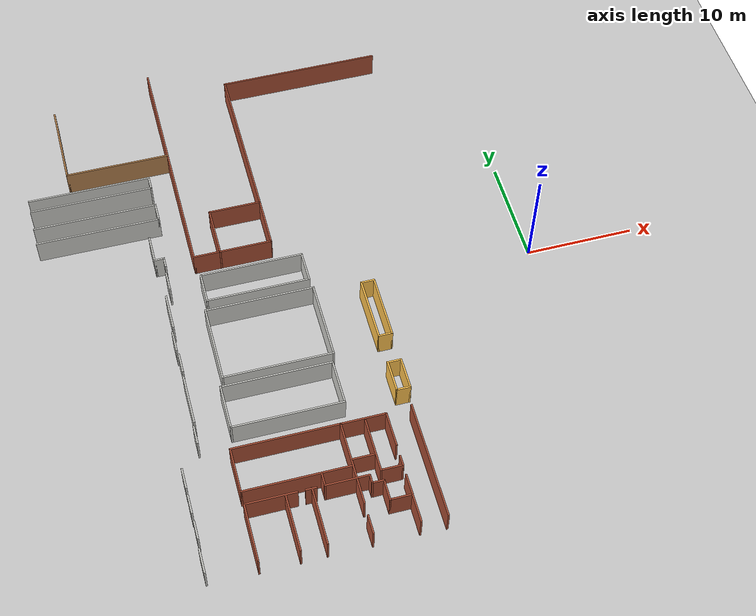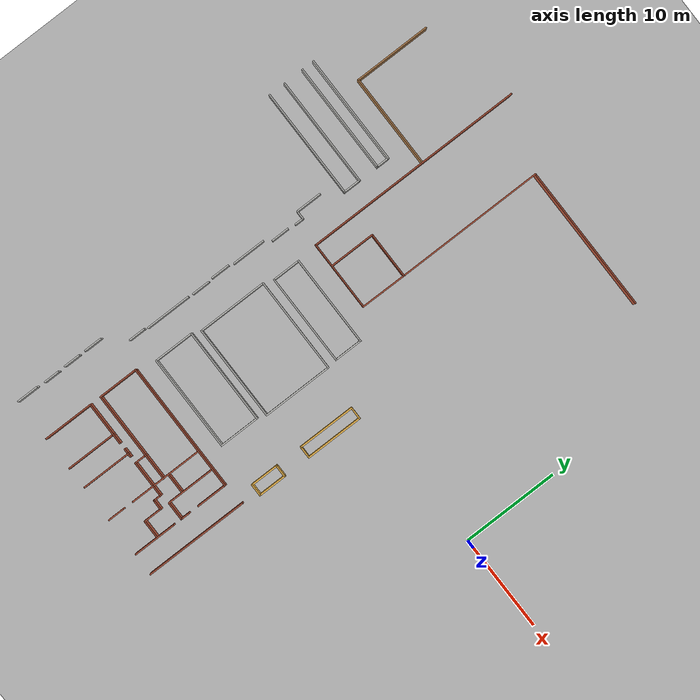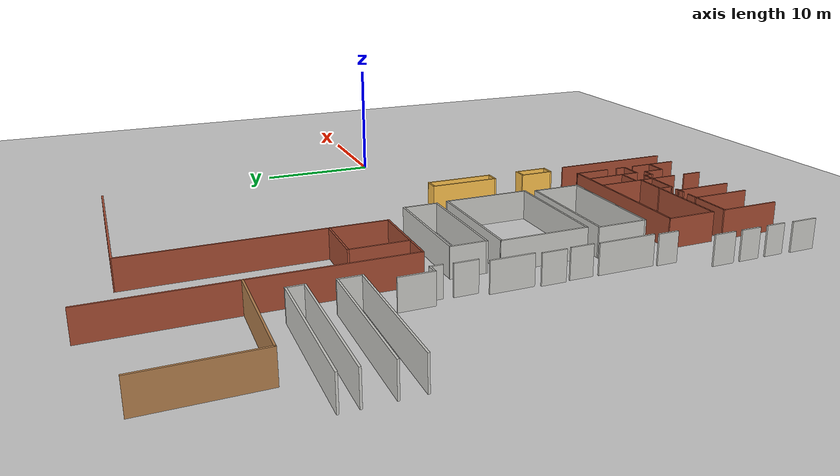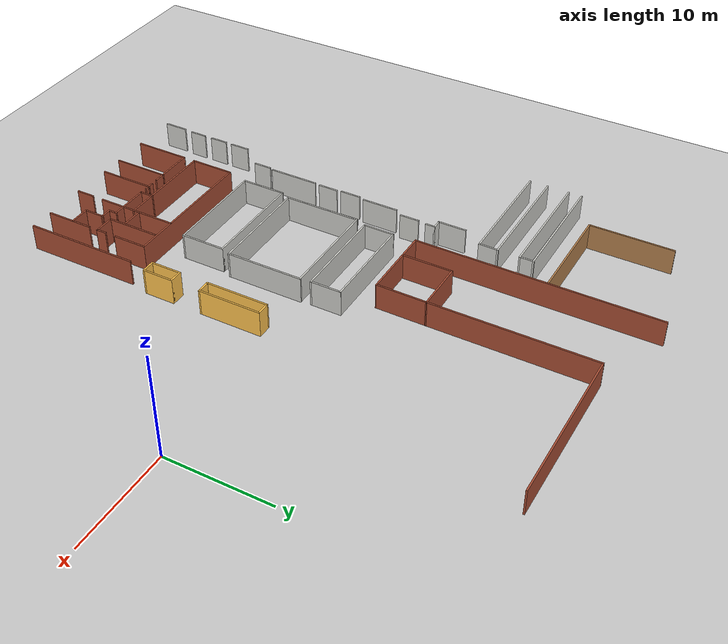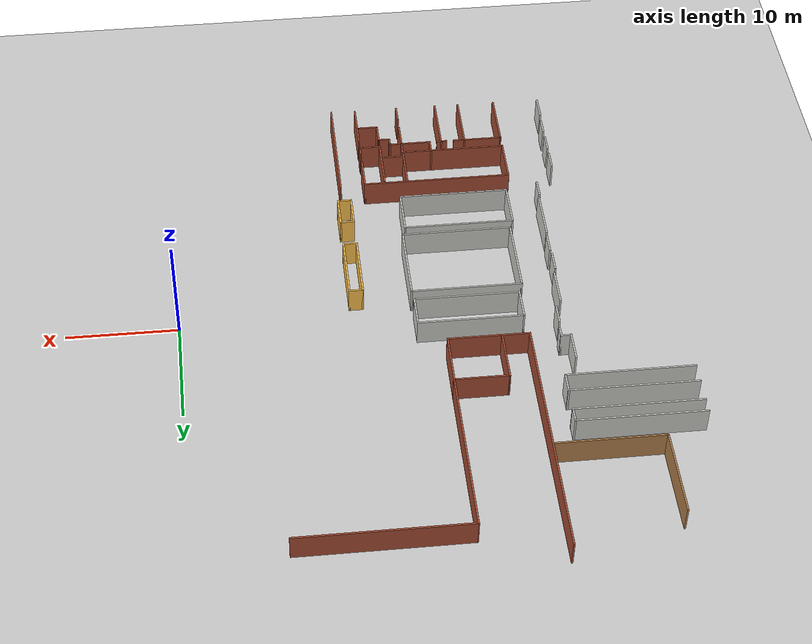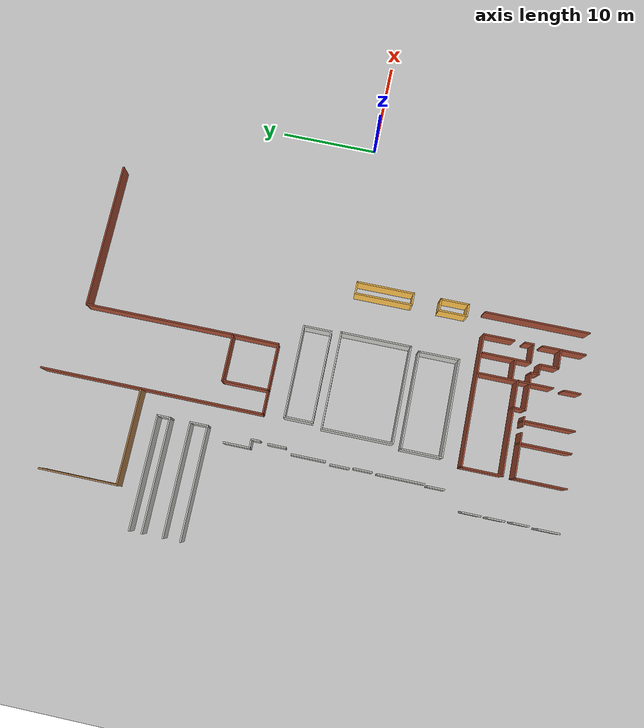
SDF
<sdf version="1.6">
 <world name="default">
  <model name="ground_plane">
   <static>1</static>
   <link name="link">
    <collision name="collision">
     <geometry><plane><normal>0 0 1</normal><size>100 100</size></plane></geometry>
     <surface><friction><ode><mu>100</mu><mu2>50</mu2></ode></friction></surface>
    </collision>
    <visual name="visual">
     <cast_shadows>0</cast_shadows>
     <geometry><plane><normal>0 0 1</normal><size>100 100</size></plane></geometry>
     <material>
      <script><uri>file://media/materials/scripts/gazebo.material</uri><name>Gazebo/Grey</name></script>
     </material>
    </visual>
   </link>
  </model>
  <model name="jeonju-2023">
   <pose>-5.65351 1.61412 0 0 -0 0</pose>
   <link name="Wall_0">
    <collision name="Wall_0_Collision">
     <geometry><box><size>10.801 0.15 2.5</size></box></geometry>
     <pose>0 0 1.25 0 -0 0</pose>
    </collision>
    <visual name="Wall_0_Visual">
     <pose>0 0 1.25 0 -0 0</pose>
     <geometry><box><size>10.801 0.15 2.5</size></box></geometry>
     <material>
      <script><uri>file://media/materials/scripts/gazebo.material</uri><name>Gazebo/Bricks</name></script>
      <ambient>1 1 1 1</ambient>
     </material>
    </visual>
    <pose>-9.9865 -21.355 0 0 0 -1.5708</pose>
   </link>
   <link name="Wall_104">
    <collision name="Wall_104_Collision">
     <geometry><box><size>22.95 0.15 2.5</size></box></geometry>
     <pose>0 0 1.25 0 -0 0</pose>
    </collision>
    <visual name="Wall_104_Visual">
     <pose>0 0 1.25 0 -0 0</pose>
     <geometry><box><size>22.95 0.15 2.5</size></box></geometry>
     <material>
      <script><uri>file://media/materials/scripts/gazebo.material</uri><name>Gazebo/Bricks</name></script>
      <ambient>1 1 1 1</ambient>
     </material>
    </visual>
    <pose>-24.7155 15.3705 0 0 0 -1.5708</pose>
   </link>
   <link name="Wall_105">
    <collision name="Wall_105_Collision">
     <geometry><box><size>2.59 0.15 2.5</size></box></geometry>
     <pose>0 0 1.25 0 -0 0</pose>
    </collision>
    <visual name="Wall_105_Visual">
     <pose>0 0 1.25 0 -0 0</pose>
     <geometry><box><size>2.59 0.15 2.5</size></box></geometry>
     <material>
      <script><uri>file://media/materials/scripts/gazebo.material</uri><name>Gazebo/Bricks</name></script>
      <ambient>1 1 1 1</ambient>
     </material>
    </visual>
    <pose>-23.4955 3.9705 0 0 -0 0</pose>
   </link>
   <link name="Wall_106">
    <collision name="Wall_106_Collision">
     <geometry><box><size>4.85 0.15 2.5</size></box></geometry>
     <pose>0 0 1.25 0 -0 0</pose>
    </collision>
    <visual name="Wall_106_Visual">
     <pose>0 0 1.25 0 -0 0</pose>
     <geometry><box><size>4.85 0.15 2.5</size></box></geometry>
     <material>
      <script><uri>file://media/materials/scripts/gazebo.material</uri><name>Gazebo/Bricks</name></script>
      <ambient>1 1 1 1</ambient>
     </material>
    </visual>
    <pose>-22.2755 6.3205 0 0 -0 1.5708</pose>
   </link>
   <link name="Wall_107">
    <collision name="Wall_107_Collision">
     <geometry><box><size>4.9351 0.15 2.5</size></box></geometry>
     <pose>0 0 1.25 0 -0 0</pose>
    </collision>
    <visual name="Wall_107_Visual">
     <pose>0 0 1.25 0 -0 0</pose>
     <geometry><box><size>4.9351 0.15 2.5</size></box></geometry>
     <material>
      <script><uri>file://media/materials/scripts/gazebo.material</uri><name>Gazebo/Bricks</name></script>
      <ambient>1 1 1 1</ambient>
     </material>
    </visual>
    <pose>-19.883 8.6705 0 0 -0 0</pose>
   </link>
   <link name="Wall_108">
    <collision name="Wall_108_Collision">
     <geometry><box><size>15.49 0.15 2.5</size></box></geometry>
     <pose>0 0 1.25 0 -0 0</pose>
    </collision>
    <visual name="Wall_108_Visual">
     <pose>0 0 1.25 0 -0 0</pose>
     <geometry><box><size>15.49 0.15 2.5</size></box></geometry>
     <material>
      <script><uri>file://media/materials/scripts/gazebo.material</uri><name>Gazebo/Bricks</name></script>
      <ambient>1 1 1 1</ambient>
     </material>
    </visual>
    <pose>-17.493 16.3405 0 0 -0 1.57112</pose>
   </link>
   <link name="Wall_109">
    <collision name="Wall_109_Collision">
     <geometry><box><size>15.219 0.15 2.5</size></box></geometry>
     <pose>0 0 1.25 0 -0 0</pose>
    </collision>
    <visual name="Wall_109_Visual">
     <pose>0 0 1.25 0 -0 0</pose>
     <geometry><box><size>15.219 0.15 2.5</size></box></geometry>
     <material>
      <script><uri>file://media/materials/scripts/gazebo.material</uri><name>Gazebo/Bricks</name></script>
      <ambient>1 1 1 1</ambient>
     </material>
    </visual>
    <pose>-9.961 24.026 0 0 -0 0.002057</pose>
   </link>
   <link name="Wall_164">
    <collision name="Wall_164_Collision">
     <geometry><box><size>7.996 0.15 2.5</size></box></geometry>
     <pose>0 0 1.25 0 -0 0</pose>
    </collision>
    <visual name="Wall_164_Visual">
     <pose>0 0 1.25 0 -0 0</pose>
     <geometry><box><size>7.996 0.15 2.5</size></box></geometry>
     <material>
      <script><uri>file://media/materials/scripts/gazebo.material</uri><name>Gazebo/Wood</name></script>
      <ambient>1 1 1 1</ambient>
     </material>
    </visual>
    <pose>-34.3735 20.3475 0 0 0 -1.5708</pose>
   </link>
   <link name="Wall_165">
    <collision name="Wall_165_Collision">
     <geometry><box><size>9.808 0.15 2.5</size></box></geometry>
     <pose>0 0 1.25 0 -0 0</pose>
    </collision>
    <visual name="Wall_165_Visual">
     <pose>0 0 1.25 0 -0 0</pose>
     <geometry><box><size>9.808 0.15 2.5</size></box></geometry>
     <material>
      <script><uri>file://media/materials/scripts/gazebo.material</uri><name>Gazebo/Wood</name></script>
      <ambient>1 1 1 1</ambient>
     </material>
    </visual>
    <pose>-29.5445 16.4245 0 0 -0 0</pose>
   </link>
   <link name="Wall_167">
    <collision name="Wall_167_Collision">
     <geometry><box><size>11.45 0.15 2.5</size></box></geometry>
     <pose>0 0 1.25 0 -0 0</pose>
    </collision>
    <visual name="Wall_167_Visual">
     <pose>0 0 1.25 0 -0 0</pose>
     <geometry><box><size>11.45 0.15 2.5</size></box></geometry>
     <material>
      <script><uri>file://media/materials/scripts/gazebo.material</uri><name>Gazebo/CeilingTiled</name></script>
      <ambient>0.435294 0.796078 0.67451 1</ambient>
     </material>
    </visual>
    <pose>-32.6255 14.1675 0 0 -0 0</pose>
   </link>
   <link name="Wall_168">
    <collision name="Wall_168_Collision">
     <geometry><box><size>1.41739 0.15 2.5</size></box></geometry>
     <pose>0 0 1.25 0 -0 0</pose>
    </collision>
    <visual name="Wall_168_Visual">
     <pose>0 0 1.25 0 -0 0</pose>
     <geometry><box><size>1.41739 0.15 2.5</size></box></geometry>
     <material>
      <script><uri>file://media/materials/scripts/gazebo.material</uri><name>Gazebo/CeilingTiled</name></script>
      <ambient>0.435294 0.796078 0.67451 1</ambient>
     </material>
    </visual>
    <pose>-26.9755 13.534 0 0 0 -1.5708</pose>
   </link>
   <link name="Wall_169">
    <collision name="Wall_169_Collision">
     <geometry><box><size>11.45 0.15 2.5</size></box></geometry>
     <pose>0 0 1.25 0 -0 0</pose>
    </collision>
    <visual name="Wall_169_Visual">
     <pose>0 0 1.25 0 -0 0</pose>
     <geometry><box><size>11.45 0.15 2.5</size></box></geometry>
     <material>
      <script><uri>file://media/materials/scripts/gazebo.material</uri><name>Gazebo/CeilingTiled</name></script>
      <ambient>0.435294 0.796078 0.67451 1</ambient>
     </material>
    </visual>
    <pose>-32.6255 12.9005 0 0 -0 3.14159</pose>
   </link>
   <link name="Wall_173">
    <collision name="Wall_173_Collision">
     <geometry><box><size>11.45 0.15 2.5</size></box></geometry>
     <pose>0 0 1.25 0 -0 0</pose>
    </collision>
    <visual name="Wall_173_Visual">
     <pose>0 0 1.25 0 -0 0</pose>
     <geometry><box><size>11.45 0.15 2.5</size></box></geometry>
     <material>
      <script><uri>file://media/materials/scripts/gazebo.material</uri><name>Gazebo/CeilingTiled</name></script>
      <ambient>0.435294 0.796078 0.67451 1</ambient>
     </material>
    </visual>
    <pose>-32.6255 9.0705 0 0 -0 0</pose>
   </link>
   <link name="Wall_174">
    <collision name="Wall_174_Collision">
     <geometry><box><size>1.893 0.15 2.5</size></box></geometry>
     <pose>0 0 1.25 0 -0 0</pose>
    </collision>
    <visual name="Wall_174_Visual">
     <pose>0 0 1.25 0 -0 0</pose>
     <geometry><box><size>1.893 0.15 2.5</size></box></geometry>
     <material>
      <script><uri>file://media/materials/scripts/gazebo.material</uri><name>Gazebo/CeilingTiled</name></script>
      <ambient>0.435294 0.796078 0.67451 1</ambient>
     </material>
    </visual>
    <pose>-26.9755 9.942 0 0 -0 1.5708</pose>
   </link>
   <link name="Wall_175">
    <collision name="Wall_175_Collision">
     <geometry><box><size>11.45 0.15 2.5</size></box></geometry>
     <pose>0 0 1.25 0 -0 0</pose>
    </collision>
    <visual name="Wall_175_Visual">
     <pose>0 0 1.25 0 -0 0</pose>
     <geometry><box><size>11.45 0.15 2.5</size></box></geometry>
     <material>
      <script><uri>file://media/materials/scripts/gazebo.material</uri><name>Gazebo/CeilingTiled</name></script>
      <ambient>0.435294 0.796078 0.67451 1</ambient>
     </material>
    </visual>
    <pose>-32.6255 10.8135 0 0 -0 3.14159</pose>
   </link>
   <link name="Wall_178">
    <collision name="Wall_178_Collision">
     <geometry><box><size>2.75 0.15 2.5</size></box></geometry>
     <pose>0 0 1.25 0 -0 0</pose>
    </collision>
    <visual name="Wall_178_Visual">
     <pose>0 0 1.25 0 -0 0</pose>
     <geometry><box><size>2.75 0.15 2.5</size></box></geometry>
     <material>
      <script><uri>file://media/materials/scripts/gazebo.material</uri><name>Gazebo/CeilingTiled</name></script>
      <ambient>0.760784 0.662745 0.627451 1</ambient>
     </material>
    </visual>
    <pose>-28.2255 5.8215 0 0 0 -1.5708</pose>
   </link>
   <link name="Wall_179">
    <collision name="Wall_179_Collision">
     <geometry><box><size>1 0.15 2.5</size></box></geometry>
     <pose>0 0 1.25 0 -0 0</pose>
    </collision>
    <visual name="Wall_179_Visual">
     <pose>0 0 1.25 0 -0 0</pose>
     <geometry><box><size>1 0.15 2.5</size></box></geometry>
     <material>
      <script><uri>file://media/materials/scripts/gazebo.material</uri><name>Gazebo/CeilingTiled</name></script>
      <ambient>0.760784 0.662745 0.627451 1</ambient>
     </material>
    </visual>
    <pose>-27.8005 4.5215 0 0 -0 0</pose>
   </link>
   <link name="Wall_180">
    <collision name="Wall_180_Collision">
     <geometry><box><size>1 0.15 2.5</size></box></geometry>
     <pose>0 0 1.25 0 -0 0</pose>
    </collision>
    <visual name="Wall_180_Visual">
     <pose>0 0 1.25 0 -0 0</pose>
     <geometry><box><size>1 0.15 2.5</size></box></geometry>
     <material>
      <script><uri>file://media/materials/scripts/gazebo.material</uri><name>Gazebo/CeilingTiled</name></script>
      <ambient>0.760784 0.662745 0.627451 1</ambient>
     </material>
    </visual>
    <pose>-27.3755 4.0965 0 0 0 -1.5708</pose>
   </link>
   <link name="Wall_185">
    <collision name="Wall_185_Collision">
     <geometry><box><size>1.88016 0.15 2.5</size></box></geometry>
     <pose>0 0 1.25 0 -0 0</pose>
    </collision>
    <visual name="Wall_185_Visual">
     <pose>0 0 1.25 0 -0 0</pose>
     <geometry><box><size>1.88016 0.15 2.5</size></box></geometry>
     <material>
      <script><uri>file://media/materials/scripts/gazebo.material</uri><name>Gazebo/CeilingTiled</name></script>
      <ambient>0.760784 0.662745 0.627451 1</ambient>
     </material>
    </visual>
    <pose>-27.487 1.9355 0 0 0 -1.56675</pose>
   </link>
   <link name="Wall_190">
    <collision name="Wall_190_Collision">
     <geometry><box><size>3.5 0.15 2.5</size></box></geometry>
     <pose>0 0 1.25 0 -0 0</pose>
    </collision>
    <visual name="Wall_190_Visual">
     <pose>0 0 1.25 0 -0 0</pose>
     <geometry><box><size>3.5 0.15 2.5</size></box></geometry>
     <material>
      <script><uri>file://media/materials/scripts/gazebo.material</uri><name>Gazebo/CeilingTiled</name></script>
      <ambient>0.760784 0.662745 0.627451 1</ambient>
     </material>
    </visual>
    <pose>-27.9865 -1.3485 0 0 0 -1.5708</pose>
   </link>
   <link name="Wall_195">
    <collision name="Wall_195_Collision">
     <geometry><box><size>2 0.15 2.5</size></box></geometry>
     <pose>0 0 1.25 0 -0 0</pose>
    </collision>
    <visual name="Wall_195_Visual">
     <pose>0 0 1.25 0 -0 0</pose>
     <geometry><box><size>2 0.15 2.5</size></box></geometry>
     <material>
      <script><uri>file://media/materials/scripts/gazebo.material</uri><name>Gazebo/CeilingTiled</name></script>
      <ambient>0.760784 0.662745 0.627451 1</ambient>
     </material>
    </visual>
    <pose>-28.1755 -4.5365 0 0 0 -1.5708</pose>
   </link>
   <link name="Wall_200">
    <collision name="Wall_200_Collision">
     <geometry><box><size>1.90808 0.15 2.5</size></box></geometry>
     <pose>0 0 1.25 0 -0 0</pose>
    </collision>
    <visual name="Wall_200_Visual">
     <pose>0 0 1.25 0 -0 0</pose>
     <geometry><box><size>1.90808 0.15 2.5</size></box></geometry>
     <material>
      <script><uri>file://media/materials/scripts/gazebo.material</uri><name>Gazebo/CeilingTiled</name></script>
      <ambient>0.760784 0.662745 0.627451 1</ambient>
     </material>
    </visual>
    <pose>-28.0755 -6.8505 0 0 0 -1.5708</pose>
   </link>
   <link name="Wall_205">
    <collision name="Wall_205_Collision">
     <geometry><box><size>4.75 0.15 2.5</size></box></geometry>
     <pose>0 0 1.25 0 -0 0</pose>
    </collision>
    <visual name="Wall_205_Visual">
     <pose>0 0 1.25 0 -0 0</pose>
     <geometry><box><size>4.75 0.15 2.5</size></box></geometry>
     <material>
      <script><uri>file://media/materials/scripts/gazebo.material</uri><name>Gazebo/CeilingTiled</name></script>
      <ambient>0.760784 0.662745 0.627451 1</ambient>
     </material>
    </visual>
    <pose>-28.1415 -10.6305 0 0 0 -1.5708</pose>
   </link>
   <link name="Wall_210">
    <collision name="Wall_210_Collision">
     <geometry><box><size>1.75 0.15 2.5</size></box></geometry>
     <pose>0 0 1.25 0 -0 0</pose>
    </collision>
    <visual name="Wall_210_Visual">
     <pose>0 0 1.25 0 -0 0</pose>
     <geometry><box><size>1.75 0.15 2.5</size></box></geometry>
     <material>
      <script><uri>file://media/materials/scripts/gazebo.material</uri><name>Gazebo/CeilingTiled</name></script>
      <ambient>0.760784 0.662745 0.627451 1</ambient>
     </material>
    </visual>
    <pose>-28.2755 -14.1655 0 0 0 -1.5708</pose>
   </link>
   <link name="Wall_215">
    <collision name="Wall_215_Collision">
     <geometry><box><size>1.91271 0.15 2.5</size></box></geometry>
     <pose>0 0 1.25 0 -0 0</pose>
    </collision>
    <visual name="Wall_215_Visual">
     <pose>0 0 1.25 0 -0 0</pose>
     <geometry><box><size>1.91271 0.15 2.5</size></box></geometry>
     <material>
      <script><uri>file://media/materials/scripts/gazebo.material</uri><name>Gazebo/CeilingTiled</name></script>
      <ambient>0.760784 0.662745 0.627451 1</ambient>
     </material>
    </visual>
    <pose>-30.0245 -17.948 0 0 0 -1.5708</pose>
   </link>
   <link name="Wall_220">
    <collision name="Wall_220_Collision">
     <geometry><box><size>1.75 0.15 2.5</size></box></geometry>
     <pose>0 0 1.25 0 -0 0</pose>
    </collision>
    <visual name="Wall_220_Visual">
     <pose>0 0 1.25 0 -0 0</pose>
     <geometry><box><size>1.75 0.15 2.5</size></box></geometry>
     <material>
      <script><uri>file://media/materials/scripts/gazebo.material</uri><name>Gazebo/CeilingTiled</name></script>
      <ambient>0.760784 0.662745 0.627451 1</ambient>
     </material>
    </visual>
    <pose>-30.0275 -20.3775 0 0 0 -1.5708</pose>
   </link>
   <link name="Wall_225">
    <collision name="Wall_225_Collision">
     <geometry><box><size>1.64972 0.15 2.5</size></box></geometry>
     <pose>0 0 1.25 0 -0 0</pose>
    </collision>
    <visual name="Wall_225_Visual">
     <pose>0 0 1.25 0 -0 0</pose>
     <geometry><box><size>1.64972 0.15 2.5</size></box></geometry>
     <material>
      <script><uri>file://media/materials/scripts/gazebo.material</uri><name>Gazebo/CeilingTiled</name></script>
      <ambient>0.760784 0.662745 0.627451 1</ambient>
     </material>
    </visual>
    <pose>-30.0045 -22.7795 0 0 0 -1.5708</pose>
   </link>
   <link name="Wall_229">
    <collision name="Wall_229_Collision">
     <geometry><box><size>2.25 0.15 2.5</size></box></geometry>
     <pose>0 0 1.25 0 -0 0</pose>
    </collision>
    <visual name="Wall_229_Visual">
     <pose>0 0 1.25 0 -0 0</pose>
     <geometry><box><size>2.25 0.15 2.5</size></box></geometry>
     <material>
      <script><uri>file://media/materials/scripts/gazebo.material</uri><name>Gazebo/CeilingTiled</name></script>
      <ambient>0.760784 0.662745 0.627451 1</ambient>
     </material>
    </visual>
    <pose>-30.0945 -25.5135 0 0 -0 1.5708</pose>
   </link>
   <link name="Wall_240">
    <collision name="Wall_240_Collision">
     <geometry><box><size>10.05 0.15 2.5</size></box></geometry>
     <pose>0 0 1.25 0 -0 0</pose>
    </collision>
    <visual name="Wall_240_Visual">
     <pose>0 0 1.25 0 -0 0</pose>
     <geometry><box><size>10.05 0.15 2.5</size></box></geometry>
     <material>
      <script><uri>file://media/materials/scripts/gazebo.material</uri><name>Gazebo/CeilingTiled</name></script>
      <ambient>0.996078 0.47451 0.0196078 1</ambient>
     </material>
    </visual>
    <pose>-20.3255 -10.1245 0 0 -0 0</pose>
   </link>
   <link name="Wall_241">
    <collision name="Wall_241_Collision">
     <geometry><box><size>4.25 0.15 2.5</size></box></geometry>
     <pose>0 0 1.25 0 -0 0</pose>
    </collision>
    <visual name="Wall_241_Visual">
     <pose>0 0 1.25 0 -0 0</pose>
     <geometry><box><size>4.25 0.15 2.5</size></box></geometry>
     <material>
      <script><uri>file://media/materials/scripts/gazebo.material</uri><name>Gazebo/CeilingTiled</name></script>
      <ambient>0.996078 0.47451 0.0196078 1</ambient>
     </material>
    </visual>
    <pose>-15.3755 -12.1745 0 0 0 -1.5708</pose>
   </link>
   <link name="Wall_242">
    <collision name="Wall_242_Collision">
     <geometry><box><size>10.05 0.15 2.5</size></box></geometry>
     <pose>0 0 1.25 0 -0 0</pose>
    </collision>
    <visual name="Wall_242_Visual">
     <pose>0 0 1.25 0 -0 0</pose>
     <geometry><box><size>10.05 0.15 2.5</size></box></geometry>
     <material>
      <script><uri>file://media/materials/scripts/gazebo.material</uri><name>Gazebo/CeilingTiled</name></script>
      <ambient>0.996078 0.47451 0.0196078 1</ambient>
     </material>
    </visual>
    <pose>-20.3255 -14.2245 0 0 -0 3.14159</pose>
   </link>
   <link name="Wall_243">
    <collision name="Wall_243_Collision">
     <geometry><box><size>4.25028 0.15 2.5</size></box></geometry>
     <pose>0 0 1.25 0 -0 0</pose>
    </collision>
    <visual name="Wall_243_Visual">
     <pose>0 0 1.25 0 -0 0</pose>
     <geometry><box><size>4.25028 0.15 2.5</size></box></geometry>
     <material>
      <script><uri>file://media/materials/scripts/gazebo.material</uri><name>Gazebo/CeilingTiled</name></script>
      <ambient>0.996078 0.47451 0.0196078 1</ambient>
     </material>
    </visual>
    <pose>-25.2755 -12.1745 0 0 -0 1.5708</pose>
   </link>
   <link name="Wall_245">
    <collision name="Wall_245_Collision">
     <geometry><box><size>10 0.15 2.5</size></box></geometry>
     <pose>0 0 1.25 0 -0 0</pose>
    </collision>
    <visual name="Wall_245_Visual">
     <pose>0 0 1.25 0 -0 0</pose>
     <geometry><box><size>10 0.15 2.5</size></box></geometry>
     <material>
      <script><uri>file://media/materials/scripts/gazebo.material</uri><name>Gazebo/CeilingTiled</name></script>
      <ambient>0.996078 0.47451 0.0196078 1</ambient>
     </material>
    </visual>
    <pose>-19.9787 -2.04243 0 0 0 -1.4e-05</pose>
   </link>
   <link name="Wall_246">
    <collision name="Wall_246_Collision">
     <geometry><box><size>7.33714 0.15 2.5</size></box></geometry>
     <pose>0 0 1.25 0 -0 0</pose>
    </collision>
    <visual name="Wall_246_Visual">
     <pose>0 0 1.25 0 -0 0</pose>
     <geometry><box><size>7.33714 0.15 2.5</size></box></geometry>
     <material>
      <script><uri>file://media/materials/scripts/gazebo.material</uri><name>Gazebo/CeilingTiled</name></script>
      <ambient>0.996078 0.47451 0.0196078 1</ambient>
     </material>
    </visual>
    <pose>-15.0535 -5.636 0 0 0 -1.5708</pose>
   </link>
   <link name="Wall_247">
    <collision name="Wall_247_Collision">
     <geometry><box><size>10 0.15 2.5</size></box></geometry>
     <pose>0 0 1.25 0 -0 0</pose>
    </collision>
    <visual name="Wall_247_Visual">
     <pose>0 0 1.25 0 -0 0</pose>
     <geometry><box><size>10 0.15 2.5</size></box></geometry>
     <material>
      <script><uri>file://media/materials/scripts/gazebo.material</uri><name>Gazebo/CeilingTiled</name></script>
      <ambient>0.996078 0.47451 0.0196078 1</ambient>
     </material>
    </visual>
    <pose>-19.9785 -9.2295 0 0 -0 3.14159</pose>
   </link>
   <link name="Wall_248">
    <collision name="Wall_248_Collision">
     <geometry><box><size>7.33714 0.15 2.5</size></box></geometry>
     <pose>0 0 1.25 0 -0 0</pose>
    </collision>
    <visual name="Wall_248_Visual">
     <pose>0 0 1.25 0 -0 0</pose>
     <geometry><box><size>7.33714 0.15 2.5</size></box></geometry>
     <material>
      <script><uri>file://media/materials/scripts/gazebo.material</uri><name>Gazebo/CeilingTiled</name></script>
      <ambient>0.996078 0.47451 0.0196078 1</ambient>
     </material>
    </visual>
    <pose>-24.9037 -5.63593 0 0 -0 1.57085</pose>
   </link>
   <link name="Wall_250">
    <collision name="Wall_250_Collision">
     <geometry><box><size>9.5 0.15 2.5</size></box></geometry>
     <pose>0 0 1.25 0 -0 0</pose>
    </collision>
    <visual name="Wall_250_Visual">
     <pose>0 0 1.25 0 -0 0</pose>
     <geometry><box><size>9.5 0.15 2.5</size></box></geometry>
     <material>
      <script><uri>file://media/materials/scripts/gazebo.material</uri><name>Gazebo/CeilingTiled</name></script>
      <ambient>0.996078 0.47451 0.0196078 1</ambient>
     </material>
    </visual>
    <pose>-19.8615 1.8125 0 0 -0 0</pose>
   </link>
   <link name="Wall_251">
    <collision name="Wall_251_Collision">
     <geometry><box><size>3 0.15 2.5</size></box></geometry>
     <pose>0 0 1.25 0 -0 0</pose>
    </collision>
    <visual name="Wall_251_Visual">
     <pose>0 0 1.25 0 -0 0</pose>
     <geometry><box><size>3 0.15 2.5</size></box></geometry>
     <material>
      <script><uri>file://media/materials/scripts/gazebo.material</uri><name>Gazebo/CeilingTiled</name></script>
      <ambient>0.996078 0.47451 0.0196078 1</ambient>
     </material>
    </visual>
    <pose>-15.1865 0.3875 0 0 0 -1.5708</pose>
   </link>
   <link name="Wall_252">
    <collision name="Wall_252_Collision">
     <geometry><box><size>9.5 0.15 2.5</size></box></geometry>
     <pose>0 0 1.25 0 -0 0</pose>
    </collision>
    <visual name="Wall_252_Visual">
     <pose>0 0 1.25 0 -0 0</pose>
     <geometry><box><size>9.5 0.15 2.5</size></box></geometry>
     <material>
      <script><uri>file://media/materials/scripts/gazebo.material</uri><name>Gazebo/CeilingTiled</name></script>
      <ambient>0.996078 0.47451 0.0196078 1</ambient>
     </material>
    </visual>
    <pose>-19.8615 -1.0375 0 0 -0 3.14159</pose>
   </link>
   <link name="Wall_253">
    <collision name="Wall_253_Collision">
     <geometry><box><size>3 0.15 2.5</size></box></geometry>
     <pose>0 0 1.25 0 -0 0</pose>
    </collision>
    <visual name="Wall_253_Visual">
     <pose>0 0 1.25 0 -0 0</pose>
     <geometry><box><size>3 0.15 2.5</size></box></geometry>
     <material>
      <script><uri>file://media/materials/scripts/gazebo.material</uri><name>Gazebo/CeilingTiled</name></script>
      <ambient>0.996078 0.47451 0.0196078 1</ambient>
     </material>
    </visual>
    <pose>-24.5365 0.3875 0 0 -0 1.5708</pose>
   </link>
   <link name="Wall_255">
    <collision name="Wall_255_Collision">
     <geometry><box><size>4.85013 0.15 2.5</size></box></geometry>
     <pose>0 0 1.25 0 -0 0</pose>
    </collision>
    <visual name="Wall_255_Visual">
     <pose>0 0 1.25 0 -0 0</pose>
     <geometry><box><size>4.85013 0.15 2.5</size></box></geometry>
     <material>
      <script><uri>file://media/materials/scripts/gazebo.material</uri><name>Gazebo/Bricks</name></script>
      <ambient>1 1 1 1</ambient>
     </material>
    </visual>
    <pose>-17.508 6.3205 0 0 0 -1.57824</pose>
   </link>
   <link name="Wall_256">
    <collision name="Wall_256_Collision">
     <geometry><box><size>4.9 0.15 2.5</size></box></geometry>
     <pose>0 0 1.25 0 -0 0</pose>
    </collision>
    <visual name="Wall_256_Visual">
     <pose>0 0 1.25 0 -0 0</pose>
     <geometry><box><size>4.9 0.15 2.5</size></box></geometry>
     <material>
      <script><uri>file://media/materials/scripts/gazebo.material</uri><name>Gazebo/Bricks</name></script>
      <ambient>1 1 1 1</ambient>
     </material>
    </visual>
    <pose>-19.9005 3.9705 0 0 -0 3.14159</pose>
   </link>
   <link name="Wall_284">
    <collision name="Wall_284_Collision">
     <geometry><box><size>1.35 0.15 2.5</size></box></geometry>
     <pose>0 0 1.25 0 -0 0</pose>
    </collision>
    <visual name="Wall_284_Visual">
     <pose>0 0 1.25 0 -0 0</pose>
     <geometry><box><size>1.35 0.15 2.5</size></box></geometry>
     <material>
      <script><uri>file://media/materials/scripts/gazebo.material</uri><name>Gazebo/Grey</name></script>
      <ambient>1 0.764706 0.305882 1</ambient>
     </material>
    </visual>
    <pose>-10.1755 -2.6295 0 0 -0 0</pose>
   </link>
   <link name="Wall_285">
    <collision name="Wall_285_Collision">
     <geometry><box><size>6.05 0.15 2.5</size></box></geometry>
     <pose>0 0 1.25 0 -0 0</pose>
    </collision>
    <visual name="Wall_285_Visual">
     <pose>0 0 1.25 0 -0 0</pose>
     <geometry><box><size>6.05 0.15 2.5</size></box></geometry>
     <material>
      <script><uri>file://media/materials/scripts/gazebo.material</uri><name>Gazebo/Grey</name></script>
      <ambient>1 0.764706 0.305882 1</ambient>
     </material>
    </visual>
    <pose>-9.5755 -5.5795 0 0 0 -1.5708</pose>
   </link>
   <link name="Wall_286">
    <collision name="Wall_286_Collision">
     <geometry><box><size>1.35 0.15 2.5</size></box></geometry>
     <pose>0 0 1.25 0 -0 0</pose>
    </collision>
    <visual name="Wall_286_Visual">
     <pose>0 0 1.25 0 -0 0</pose>
     <geometry><box><size>1.35 0.15 2.5</size></box></geometry>
     <material>
      <script><uri>file://media/materials/scripts/gazebo.material</uri><name>Gazebo/Grey</name></script>
      <ambient>1 0.764706 0.305882 1</ambient>
     </material>
    </visual>
    <pose>-10.1755 -8.5295 0 0 -0 3.14159</pose>
   </link>
   <link name="Wall_287">
    <collision name="Wall_287_Collision">
     <geometry><box><size>6.05 0.15 2.5</size></box></geometry>
     <pose>0 0 1.25 0 -0 0</pose>
    </collision>
    <visual name="Wall_287_Visual">
     <pose>0 0 1.25 0 -0 0</pose>
     <geometry><box><size>6.05 0.15 2.5</size></box></geometry>
     <material>
      <script><uri>file://media/materials/scripts/gazebo.material</uri><name>Gazebo/Grey</name></script>
      <ambient>1 0.764706 0.305882 1</ambient>
     </material>
    </visual>
    <pose>-10.7755 -5.5795 0 0 -0 1.5708</pose>
   </link>
   <link name="Wall_289">
    <collision name="Wall_289_Collision">
     <geometry><box><size>1.35 0.15 2.5</size></box></geometry>
     <pose>0 0 1.25 0 -0 0</pose>
    </collision>
    <visual name="Wall_289_Visual">
     <pose>0 0 1.25 0 -0 0</pose>
     <geometry><box><size>1.35 0.15 2.5</size></box></geometry>
     <material>
      <script><uri>file://media/materials/scripts/gazebo.material</uri><name>Gazebo/Grey</name></script>
      <ambient>1 0.764706 0.305882 1</ambient>
     </material>
    </visual>
    <pose>-10.1755 -11.3735 0 0 -0 0</pose>
   </link>
   <link name="Wall_290">
    <collision name="Wall_290_Collision">
     <geometry><box><size>3.006 0.15 2.5</size></box></geometry>
     <pose>0 0 1.25 0 -0 0</pose>
    </collision>
    <visual name="Wall_290_Visual">
     <pose>0 0 1.25 0 -0 0</pose>
     <geometry><box><size>3.006 0.15 2.5</size></box></geometry>
     <material>
      <script><uri>file://media/materials/scripts/gazebo.material</uri><name>Gazebo/Grey</name></script>
      <ambient>1 0.764706 0.305882 1</ambient>
     </material>
    </visual>
    <pose>-9.5755 -12.8015 0 0 0 -1.5708</pose>
   </link>
   <link name="Wall_291">
    <collision name="Wall_291_Collision">
     <geometry><box><size>1.35 0.15 2.5</size></box></geometry>
     <pose>0 0 1.25 0 -0 0</pose>
    </collision>
    <visual name="Wall_291_Visual">
     <pose>0 0 1.25 0 -0 0</pose>
     <geometry><box><size>1.35 0.15 2.5</size></box></geometry>
     <material>
      <script><uri>file://media/materials/scripts/gazebo.material</uri><name>Gazebo/Grey</name></script>
      <ambient>1 0.764706 0.305882 1</ambient>
     </material>
    </visual>
    <pose>-10.1755 -14.2295 0 0 -0 3.14159</pose>
   </link>
   <link name="Wall_292">
    <collision name="Wall_292_Collision">
     <geometry><box><size>3.006 0.15 2.5</size></box></geometry>
     <pose>0 0 1.25 0 -0 0</pose>
    </collision>
    <visual name="Wall_292_Visual">
     <pose>0 0 1.25 0 -0 0</pose>
     <geometry><box><size>3.006 0.15 2.5</size></box></geometry>
     <material>
      <script><uri>file://media/materials/scripts/gazebo.material</uri><name>Gazebo/Grey</name></script>
      <ambient>1 0.764706 0.305882 1</ambient>
     </material>
    </visual>
    <pose>-10.7755 -12.8015 0 0 -0 1.5708</pose>
   </link>
   <link name="Wall_45">
    <collision name="Wall_45_Collision">
     <geometry><box><size>13.65 0.15 2.5</size></box></geometry>
     <pose>0 0 1.25 0 -0 0</pose>
    </collision>
    <visual name="Wall_45_Visual">
     <pose>0 0 1.25 0 -0 0</pose>
     <geometry><box><size>13.65 0.15 2.5</size></box></geometry>
     <material>
      <script><uri>file://media/materials/scripts/gazebo.material</uri><name>Gazebo/Bricks</name></script>
      <ambient>1 1 1 1</ambient>
     </material>
    </visual>
    <pose>-19.0255 -16.2505 0 0 -0 0</pose>
   </link>
   <link name="Wall_46">
    <collision name="Wall_46_Collision">
     <geometry><box><size>3.25 0.15 2.5</size></box></geometry>
     <pose>0 0 1.25 0 -0 0</pose>
    </collision>
    <visual name="Wall_46_Visual">
     <pose>0 0 1.25 0 -0 0</pose>
     <geometry><box><size>3.25 0.15 2.5</size></box></geometry>
     <material>
      <script><uri>file://media/materials/scripts/gazebo.material</uri><name>Gazebo/Bricks</name></script>
      <ambient>1 1 1 1</ambient>
     </material>
    </visual>
    <pose>-12.2755 -17.8005 0 0 0 -1.5708</pose>
   </link>
   <link name="Wall_51">
    <collision name="Wall_51_Collision">
     <geometry><box><size>2.03777 0.15 2.5</size></box></geometry>
     <pose>0 0 1.25 0 -0 0</pose>
    </collision>
    <visual name="Wall_51_Visual">
     <pose>0 0 1.25 0 -0 0</pose>
     <geometry><box><size>2.03777 0.15 2.5</size></box></geometry>
     <material>
      <script><uri>file://media/materials/scripts/gazebo.material</uri><name>Gazebo/Bricks</name></script>
      <ambient>1 1 1 1</ambient>
     </material>
    </visual>
    <pose>-13.2195 -21.3295 0 0 -0 3.14159</pose>
   </link>
   <link name="Wall_52">
    <collision name="Wall_52_Collision">
     <geometry><box><size>5.02902 0.15 2.5</size></box></geometry>
     <pose>0 0 1.25 0 -0 0</pose>
    </collision>
    <visual name="Wall_52_Visual">
     <pose>0 0 1.25 0 -0 0</pose>
     <geometry><box><size>5.02902 0.15 2.5</size></box></geometry>
     <material>
      <script><uri>file://media/materials/scripts/gazebo.material</uri><name>Gazebo/Bricks</name></script>
      <ambient>1 1 1 1</ambient>
     </material>
    </visual>
    <pose>-14.1635 -18.89 0 0 -0 1.5708</pose>
   </link>
   <link name="Wall_54">
    <collision name="Wall_54_Collision">
     <geometry><box><size>4.49078 0.15 2.5</size></box></geometry>
     <pose>0 0 1.25 0 -0 0</pose>
    </collision>
    <visual name="Wall_54_Visual">
     <pose>0 0 1.25 0 -0 0</pose>
     <geometry><box><size>4.49078 0.15 2.5</size></box></geometry>
     <material>
      <script><uri>file://media/materials/scripts/gazebo.material</uri><name>Gazebo/Bricks</name></script>
      <ambient>1 1 1 1</ambient>
     </material>
    </visual>
    <pose>-12.2755 -24.459 0 0 0 -1.5708</pose>
   </link>
   <link name="Wall_56">
    <collision name="Wall_56_Collision">
     <geometry><box><size>5.25 0.15 2.5</size></box></geometry>
     <pose>0 0 1.25 0 -0 0</pose>
    </collision>
    <visual name="Wall_56_Visual">
     <pose>0 0 1.25 0 -0 0</pose>
     <geometry><box><size>5.25 0.15 2.5</size></box></geometry>
     <material>
      <script><uri>file://media/materials/scripts/gazebo.material</uri><name>Gazebo/Bricks</name></script>
      <ambient>1 1 1 1</ambient>
     </material>
    </visual>
    <pose>-25.7755 -24.0795 0 0 -0 1.5708</pose>
   </link>
   <link name="Wall_57">
    <collision name="Wall_57_Collision">
     <geometry><box><size>4.605 0.15 2.5</size></box></geometry>
     <pose>0 0 1.25 0 -0 0</pose>
    </collision>
    <visual name="Wall_57_Visual">
     <pose>0 0 1.25 0 -0 0</pose>
     <geometry><box><size>4.605 0.15 2.5</size></box></geometry>
     <material>
      <script><uri>file://media/materials/scripts/gazebo.material</uri><name>Gazebo/Bricks</name></script>
      <ambient>1 1 1 1</ambient>
     </material>
    </visual>
    <pose>-23.548 -21.5295 0 0 -0 0</pose>
   </link>
   <link name="Wall_59">
    <collision name="Wall_59_Collision">
     <geometry><box><size>1.34207 0.15 2.5</size></box></geometry>
     <pose>0 0 1.25 0 -0 0</pose>
    </collision>
    <visual name="Wall_59_Visual">
     <pose>0 0 1.25 0 -0 0</pose>
     <geometry><box><size>1.34207 0.15 2.5</size></box></geometry>
     <material>
      <script><uri>file://media/materials/scripts/gazebo.material</uri><name>Gazebo/Bricks</name></script>
      <ambient>1 1 1 1</ambient>
     </material>
    </visual>
    <pose>-18.9755 -20.9335 0 0 -0 1.5708</pose>
   </link>
   <link name="Wall_61">
    <collision name="Wall_61_Collision">
     <geometry><box><size>4.237 0.15 2.5</size></box></geometry>
     <pose>0 0 1.25 0 -0 0</pose>
    </collision>
    <visual name="Wall_61_Visual">
     <pose>0 0 1.25 0 -0 0</pose>
     <geometry><box><size>4.237 0.15 2.5</size></box></geometry>
     <material>
      <script><uri>file://media/materials/scripts/gazebo.material</uri><name>Gazebo/Bricks</name></script>
      <ambient>1 1 1 1</ambient>
     </material>
    </visual>
    <pose>-25.7755 -18.294 0 0 -0 1.5708</pose>
   </link>
   <link name="Wall_63">
    <collision name="Wall_63_Collision">
     <geometry><box><size>1 0.15 2.5</size></box></geometry>
     <pose>0 0 1.25 0 -0 0</pose>
    </collision>
    <visual name="Wall_63_Visual">
     <pose>0 0 1.25 0 -0 0</pose>
     <geometry><box><size>1 0.15 2.5</size></box></geometry>
     <material>
      <script><uri>file://media/materials/scripts/gazebo.material</uri><name>Gazebo/Bricks</name></script>
      <ambient>1 1 1 1</ambient>
     </material>
    </visual>
    <pose>-20.1515 -21.5295 0 0 -0 0</pose>
   </link>
   <link name="Wall_65">
    <collision name="Wall_65_Collision">
     <geometry><box><size>5.25 0.15 2.5</size></box></geometry>
     <pose>0 0 1.25 0 -0 0</pose>
    </collision>
    <visual name="Wall_65_Visual">
     <pose>0 0 1.25 0 -0 0</pose>
     <geometry><box><size>5.25 0.15 2.5</size></box></geometry>
     <material>
      <script><uri>file://media/materials/scripts/gazebo.material</uri><name>Gazebo/Bricks</name></script>
      <ambient>1 1 1 1</ambient>
     </material>
    </visual>
    <pose>-22.3095 -24.0755 0 0 0 -1.5708</pose>
   </link>
   <link name="Wall_67">
    <collision name="Wall_67_Collision">
     <geometry><box><size>5.25 0.15 2.5</size></box></geometry>
     <pose>0 0 1.25 0 -0 0</pose>
    </collision>
    <visual name="Wall_67_Visual">
     <pose>0 0 1.25 0 -0 0</pose>
     <geometry><box><size>5.25 0.15 2.5</size></box></geometry>
     <material>
      <script><uri>file://media/materials/scripts/gazebo.material</uri><name>Gazebo/Bricks</name></script>
      <ambient>1 1 1 1</ambient>
     </material>
    </visual>
    <pose>-20.0665 -24.0525 0 0 0 -1.5708</pose>
   </link>
   <link name="Wall_69">
    <collision name="Wall_69_Collision">
     <geometry><box><size>3.952 0.15 2.5</size></box></geometry>
     <pose>0 0 1.25 0 -0 0</pose>
    </collision>
    <visual name="Wall_69_Visual">
     <pose>0 0 1.25 0 -0 0</pose>
     <geometry><box><size>3.952 0.15 2.5</size></box></geometry>
     <material>
      <script><uri>file://media/materials/scripts/gazebo.material</uri><name>Gazebo/Bricks</name></script>
      <ambient>1 1 1 1</ambient>
     </material>
    </visual>
    <pose>-17.0745 -21.5295 0 0 -0 0</pose>
   </link>
   <link name="Wall_70">
    <collision name="Wall_70_Collision">
     <geometry><box><size>0.908018 0.15 2.5</size></box></geometry>
     <pose>0 0 1.25 0 -0 0</pose>
    </collision>
    <visual name="Wall_70_Visual">
     <pose>0 0 1.25 0 -0 0</pose>
     <geometry><box><size>0.908018 0.15 2.5</size></box></geometry>
     <material>
      <script><uri>file://media/materials/scripts/gazebo.material</uri><name>Gazebo/Bricks</name></script>
      <ambient>1 1 1 1</ambient>
     </material>
    </visual>
    <pose>-15.1735 -21.9085 0 0 0 -1.5708</pose>
   </link>
   <link name="Wall_71">
    <collision name="Wall_71_Collision">
     <geometry><box><size>1.14832 0.15 2.5</size></box></geometry>
     <pose>0 0 1.25 0 -0 0</pose>
    </collision>
    <visual name="Wall_71_Visual">
     <pose>0 0 1.25 0 -0 0</pose>
     <geometry><box><size>1.14832 0.15 2.5</size></box></geometry>
     <material>
      <script><uri>file://media/materials/scripts/gazebo.material</uri><name>Gazebo/Bricks</name></script>
      <ambient>1 1 1 1</ambient>
     </material>
    </visual>
    <pose>-14.6745 -22.2875 0 0 -0 0</pose>
   </link>
   <link name="Wall_72">
    <collision name="Wall_72_Collision">
     <geometry><box><size>1.992 0.15 2.5</size></box></geometry>
     <pose>0 0 1.25 0 -0 0</pose>
    </collision>
    <visual name="Wall_72_Visual">
     <pose>0 0 1.25 0 -0 0</pose>
     <geometry><box><size>1.992 0.15 2.5</size></box></geometry>
     <material>
      <script><uri>file://media/materials/scripts/gazebo.material</uri><name>Gazebo/Bricks</name></script>
      <ambient>1 1 1 1</ambient>
     </material>
    </visual>
    <pose>-14.1755 -23.2085 0 0 0 -1.5708</pose>
   </link>
   <link name="Wall_73">
    <collision name="Wall_73_Collision">
     <geometry><box><size>1.95 0.15 2.5</size></box></geometry>
     <pose>0 0 1.25 0 -0 0</pose>
    </collision>
    <visual name="Wall_73_Visual">
     <pose>0 0 1.25 0 -0 0</pose>
     <geometry><box><size>1.95 0.15 2.5</size></box></geometry>
     <material>
      <script><uri>file://media/materials/scripts/gazebo.material</uri><name>Gazebo/Bricks</name></script>
      <ambient>1 1 1 1</ambient>
     </material>
    </visual>
    <pose>-13.2755 -24.1295 0 0 -0 0</pose>
   </link>
   <link name="Wall_77">
    <collision name="Wall_77_Collision">
     <geometry><box><size>1.75 0.15 2.5</size></box></geometry>
     <pose>0 0 1.25 0 -0 0</pose>
    </collision>
    <visual name="Wall_77_Visual">
     <pose>0 0 1.25 0 -0 0</pose>
     <geometry><box><size>1.75 0.15 2.5</size></box></geometry>
     <material>
      <script><uri>file://media/materials/scripts/gazebo.material</uri><name>Gazebo/Bricks</name></script>
      <ambient>1 1 1 1</ambient>
     </material>
    </visual>
    <pose>-16.2905 -25.8645 0 0 0 -1.5708</pose>
   </link>
   <link name="Wall_82">
    <collision name="Wall_82_Collision">
     <geometry><box><size>2 0.15 2.5</size></box></geometry>
     <pose>0 0 1.25 0 -0 0</pose>
    </collision>
    <visual name="Wall_82_Visual">
     <pose>0 0 1.25 0 -0 0</pose>
     <geometry><box><size>2 0.15 2.5</size></box></geometry>
     <material>
      <script><uri>file://media/materials/scripts/gazebo.material</uri><name>Gazebo/Bricks</name></script>
      <ambient>1 1 1 1</ambient>
     </material>
    </visual>
    <pose>-15.2325 -19.7675 0 0 -0 0</pose>
   </link>
   <link name="Wall_86">
    <collision name="Wall_86_Collision">
     <geometry><box><size>7.75 0.15 2.5</size></box></geometry>
     <pose>0 0 1.25 0 -0 0</pose>
    </collision>
    <visual name="Wall_86_Visual">
     <pose>0 0 1.25 0 -0 0</pose>
     <geometry><box><size>7.75 0.15 2.5</size></box></geometry>
     <material>
      <script><uri>file://media/materials/scripts/gazebo.material</uri><name>Gazebo/Bricks</name></script>
      <ambient>1 1 1 1</ambient>
     </material>
    </visual>
    <pose>-16.2755 -20.0745 0 0 0 -1.5708</pose>
   </link>
   <link name="Wall_88">
    <collision name="Wall_88_Collision">
     <geometry><box><size>9.6766 0.15 2.5</size></box></geometry>
     <pose>0 0 1.25 0 -0 0</pose>
    </collision>
    <visual name="Wall_88_Visual">
     <pose>0 0 1.25 0 -0 0</pose>
     <geometry><box><size>9.6766 0.15 2.5</size></box></geometry>
     <material>
      <script><uri>file://media/materials/scripts/gazebo.material</uri><name>Gazebo/Bricks</name></script>
      <ambient>1 1 1 1</ambient>
     </material>
    </visual>
    <pose>-21.012 -20.3375 0 0 -0 0</pose>
   </link>
   <link name="Wall_90">
    <collision name="Wall_90_Collision">
     <geometry><box><size>0.984 0.15 2.5</size></box></geometry>
     <pose>0 0 1.25 0 -0 0</pose>
    </collision>
    <visual name="Wall_90_Visual">
     <pose>0 0 1.25 0 -0 0</pose>
     <geometry><box><size>0.984 0.15 2.5</size></box></geometry>
     <material>
      <script><uri>file://media/materials/scripts/gazebo.material</uri><name>Gazebo/Bricks</name></script>
      <ambient>1 1 1 1</ambient>
     </material>
    </visual>
    <pose>-12.2755 -20.9125 0 0 0 -1.5708</pose>
   </link>
   <static>1</static>
  </model>
 </world>
</sdf>
